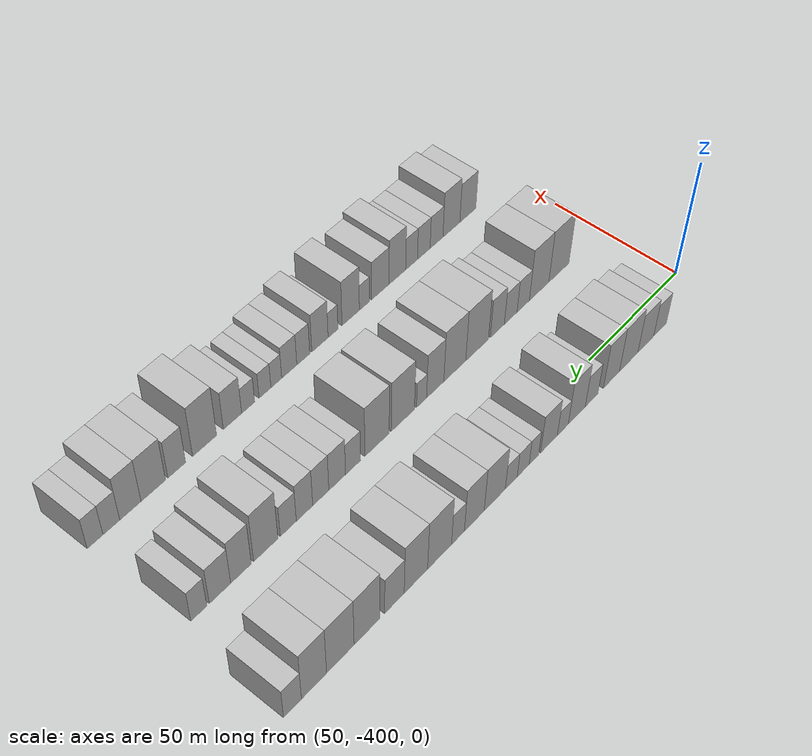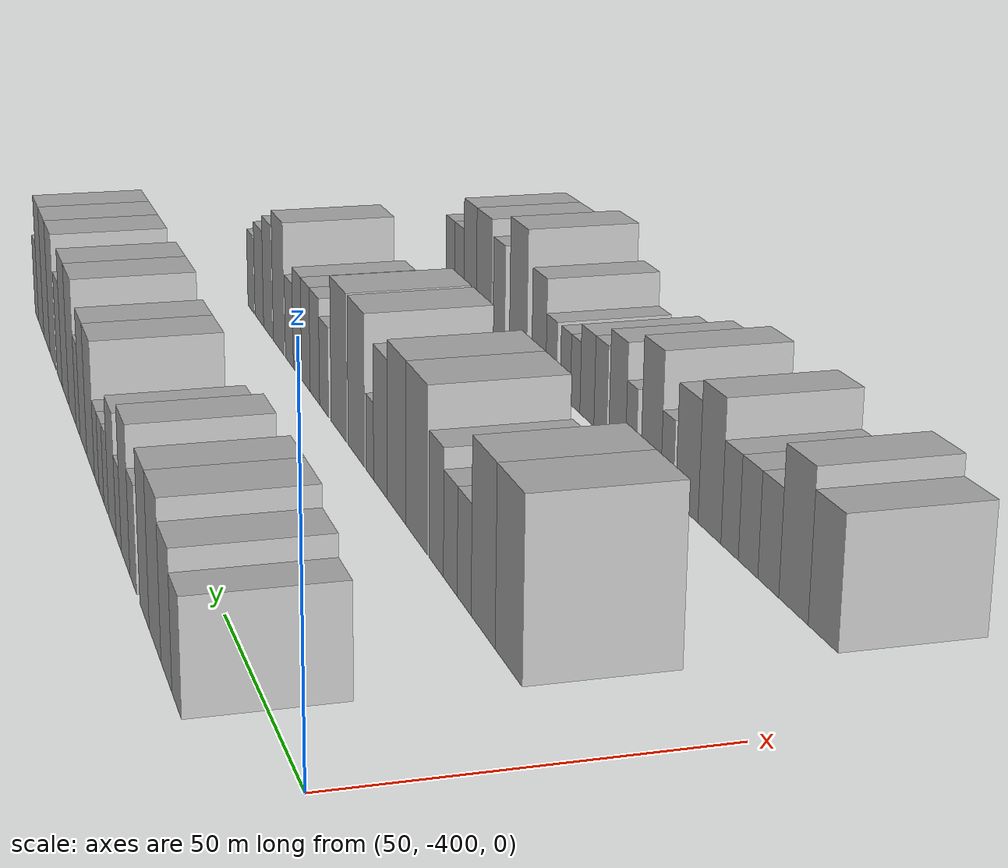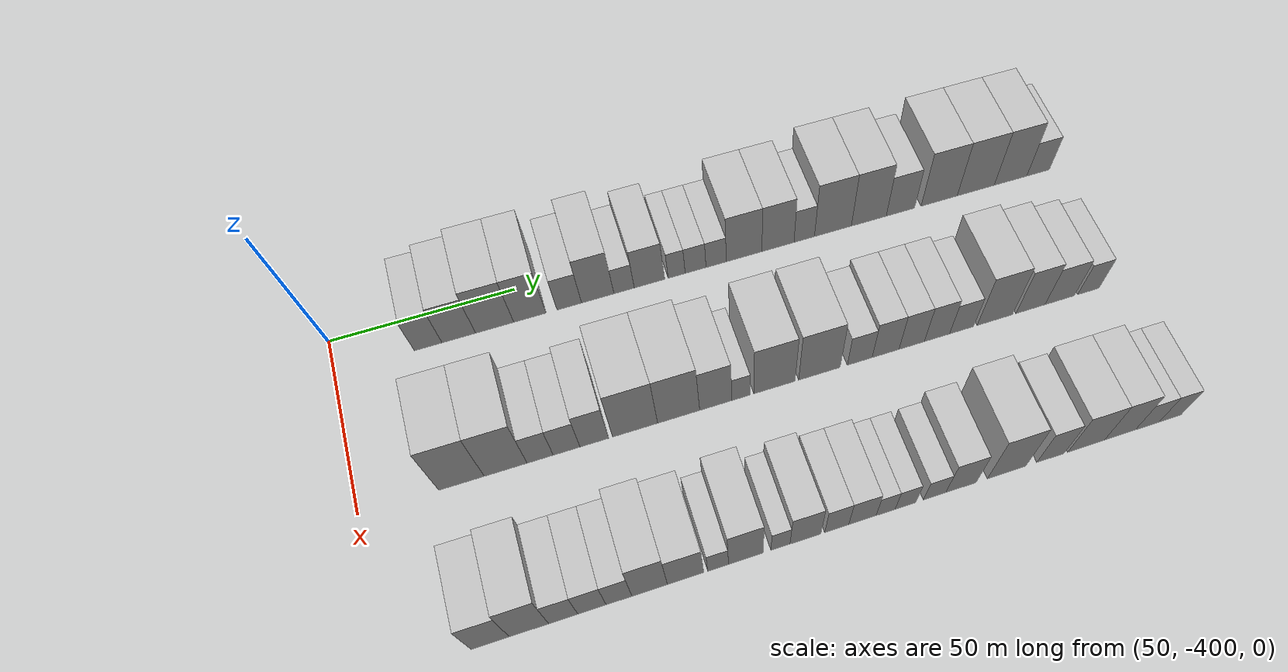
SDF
<sdf version="1.6">
 <world name="default">
  <model name="building_1">
   <static>1</static>
   <pose>50.0000 -375.3287 0 0.000000 0.000000 0.000000</pose>
   <link name="link">
    <pose>0 0 7.50 0 0 0</pose>
    <collision name="collision"><geometry><box><size>20.0000 7.3426 15.0000</size></box></geometry></collision>
    <visual name="visual">
     <cast_shadows>0</cast_shadows>
     <geometry><box><size>20.0000 7.3426 15.0000</size></box></geometry>
     <material>
      <script>
       <uri>model://HANNAS_wall/materials/scripts</uri>
       <uri>model://HANNAS_wall/materials/textures</uri>
       <name>vrc/HANNAS_wall</name>
      </script>
     </material>
    </visual>
   </link>
  </model>
  <model name="building_2">
   <static>1</static>
   <pose>50.0000 -367.1831 0 0.000000 0.000000 0.000000</pose>
   <link name="link">
    <pose>0 0 9.00 0 0 0</pose>
    <collision name="collision"><geometry><box><size>20.0000 8.9486 18.0000</size></box></geometry></collision>
    <visual name="visual">
     <cast_shadows>0</cast_shadows>
     <geometry><box><size>20.0000 8.9486 18.0000</size></box></geometry>
     <material>
      <script>
       <uri>model://HANNAS_wall/materials/scripts</uri>
       <uri>model://HANNAS_wall/materials/textures</uri>
       <name>vrc/HANNAS_wall</name>
      </script>
     </material>
    </visual>
   </link>
  </model>
  <model name="building_3">
   <static>1</static>
   <pose>50.0000 -357.5547 0 0.000000 0.000000 0.000000</pose>
   <link name="link">
    <pose>0 0 10.50 0 0 0</pose>
    <collision name="collision"><geometry><box><size>20.0000 10.3081 21.0000</size></box></geometry></collision>
    <visual name="visual">
     <cast_shadows>0</cast_shadows>
     <geometry><box><size>20.0000 10.3081 21.0000</size></box></geometry>
     <material>
      <script>
       <uri>model://HANNAS_wall/materials/scripts</uri>
       <uri>model://HANNAS_wall/materials/textures</uri>
       <name>vrc/HANNAS_wall</name>
      </script>
     </material>
    </visual>
   </link>
  </model>
  <model name="building_4">
   <static>1</static>
   <pose>50.0000 -347.9794 0 0.000000 0.000000 0.000000</pose>
   <link name="link">
    <pose>0 0 10.50 0 0 0</pose>
    <collision name="collision"><geometry><box><size>20.0000 8.8426 21.0000</size></box></geometry></collision>
    <visual name="visual">
     <cast_shadows>0</cast_shadows>
     <geometry><box><size>20.0000 8.8426 21.0000</size></box></geometry>
     <material>
      <script>
       <uri>model://HANNAS_wall/materials/scripts</uri>
       <uri>model://HANNAS_wall/materials/textures</uri>
       <name>vrc/HANNAS_wall</name>
      </script>
     </material>
    </visual>
   </link>
  </model>
  <model name="building_5">
   <static>1</static>
   <pose>50.0000 -337.1684 0 0.000000 0.000000 0.000000</pose>
   <link name="link">
    <pose>0 0 7.50 0 0 0</pose>
    <collision name="collision"><geometry><box><size>20.0000 6.7795 15.0000</size></box></geometry></collision>
    <visual name="visual">
     <cast_shadows>0</cast_shadows>
     <geometry><box><size>20.0000 6.7795 15.0000</size></box></geometry>
     <material>
      <script>
       <uri>model://HANNAS_wall/materials/scripts</uri>
       <uri>model://HANNAS_wall/materials/textures</uri>
       <name>vrc/HANNAS_wall</name>
      </script>
     </material>
    </visual>
   </link>
  </model>
  <model name="building_6">
   <static>1</static>
   <pose>50.0000 -329.2807 0 0.000000 0.000000 0.000000</pose>
   <link name="link">
    <pose>0 0 10.50 0 0 0</pose>
    <collision name="collision"><geometry><box><size>20.0000 8.9958 21.0000</size></box></geometry></collision>
    <visual name="visual">
     <cast_shadows>0</cast_shadows>
     <geometry><box><size>20.0000 8.9958 21.0000</size></box></geometry>
     <material>
      <script>
       <uri>model://HANNAS_wall/materials/scripts</uri>
       <uri>model://HANNAS_wall/materials/textures</uri>
       <name>vrc/HANNAS_wall</name>
      </script>
     </material>
    </visual>
   </link>
  </model>
  <model name="building_7">
   <static>1</static>
   <pose>50.0000 -321.9267 0 0.000000 0.000000 0.000000</pose>
   <link name="link">
    <pose>0 0 6.00 0 0 0</pose>
    <collision name="collision"><geometry><box><size>20.0000 5.7122 12.0000</size></box></geometry></collision>
    <visual name="visual">
     <cast_shadows>0</cast_shadows>
     <geometry><box><size>20.0000 5.7122 12.0000</size></box></geometry>
     <material>
      <script>
       <uri>model://HANNAS_wall/materials/scripts</uri>
       <uri>model://HANNAS_wall/materials/textures</uri>
       <name>vrc/HANNAS_wall</name>
      </script>
     </material>
    </visual>
   </link>
  </model>
  <model name="building_8">
   <static>1</static>
   <pose>50.0000 -314.7755 0 0.000000 0.000000 0.000000</pose>
   <link name="link">
    <pose>0 0 9.00 0 0 0</pose>
    <collision name="collision"><geometry><box><size>20.0000 8.5903 18.0000</size></box></geometry></collision>
    <visual name="visual">
     <cast_shadows>0</cast_shadows>
     <geometry><box><size>20.0000 8.5903 18.0000</size></box></geometry>
     <material>
      <script>
       <uri>model://HANNAS_wall/materials/scripts</uri>
       <uri>model://HANNAS_wall/materials/textures</uri>
       <name>vrc/HANNAS_wall</name>
      </script>
     </material>
    </visual>
   </link>
  </model>
  <model name="building_9">
   <static>1</static>
   <pose>50.0000 -307.0648 0 0.000000 0.000000 0.000000</pose>
   <link name="link">
    <pose>0 0 6.00 0 0 0</pose>
    <collision name="collision"><geometry><box><size>20.0000 4.8309 12.0000</size></box></geometry></collision>
    <visual name="visual">
     <cast_shadows>0</cast_shadows>
     <geometry><box><size>20.0000 4.8309 12.0000</size></box></geometry>
     <material>
      <script>
       <uri>model://HANNAS_wall/materials/scripts</uri>
       <uri>model://HANNAS_wall/materials/textures</uri>
       <name>vrc/HANNAS_wall</name>
      </script>
     </material>
    </visual>
   </link>
  </model>
  <model name="building_10">
   <static>1</static>
   <pose>50.0000 -301.6668 0 0.000000 0.000000 0.000000</pose>
   <link name="link">
    <pose>0 0 6.00 0 0 0</pose>
    <collision name="collision"><geometry><box><size>20.0000 5.9651 12.0000</size></box></geometry></collision>
    <visual name="visual">
     <cast_shadows>0</cast_shadows>
     <geometry><box><size>20.0000 5.9651 12.0000</size></box></geometry>
     <material>
      <script>
       <uri>model://HANNAS_wall/materials/scripts</uri>
       <uri>model://HANNAS_wall/materials/textures</uri>
       <name>vrc/HANNAS_wall</name>
      </script>
     </material>
    </visual>
   </link>
  </model>
  <model name="building_11">
   <static>1</static>
   <pose>50.0000 -295.7487 0 0.000000 0.000000 0.000000</pose>
   <link name="link">
    <pose>0 0 6.00 0 0 0</pose>
    <collision name="collision"><geometry><box><size>20.0000 5.8713 12.0000</size></box></geometry></collision>
    <visual name="visual">
     <cast_shadows>0</cast_shadows>
     <geometry><box><size>20.0000 5.8713 12.0000</size></box></geometry>
     <material>
      <script>
       <uri>model://HANNAS_wall/materials/scripts</uri>
       <uri>model://HANNAS_wall/materials/textures</uri>
       <name>vrc/HANNAS_wall</name>
      </script>
     </material>
    </visual>
   </link>
  </model>
  <model name="building_12">
   <static>1</static>
   <pose>50.0000 -287.6685 0 0.000000 0.000000 0.000000</pose>
   <link name="link">
    <pose>0 0 10.50 0 0 0</pose>
    <collision name="collision"><geometry><box><size>20.0000 10.2891 21.0000</size></box></geometry></collision>
    <visual name="visual">
     <cast_shadows>0</cast_shadows>
     <geometry><box><size>20.0000 10.2891 21.0000</size></box></geometry>
     <material>
      <script>
       <uri>model://HANNAS_wall/materials/scripts</uri>
       <uri>model://HANNAS_wall/materials/textures</uri>
       <name>vrc/HANNAS_wall</name>
      </script>
     </material>
    </visual>
   </link>
  </model>
  <model name="building_13">
   <static>1</static>
   <pose>50.0000 -277.7995 0 0.000000 0.000000 0.000000</pose>
   <link name="link">
    <pose>0 0 10.50 0 0 0</pose>
    <collision name="collision"><geometry><box><size>20.0000 9.4488 21.0000</size></box></geometry></collision>
    <visual name="visual">
     <cast_shadows>0</cast_shadows>
     <geometry><box><size>20.0000 9.4488 21.0000</size></box></geometry>
     <material>
      <script>
       <uri>model://HANNAS_wall/materials/scripts</uri>
       <uri>model://HANNAS_wall/materials/textures</uri>
       <name>vrc/HANNAS_wall</name>
      </script>
     </material>
    </visual>
   </link>
  </model>
  <model name="building_14">
   <static>1</static>
   <pose>50.0000 -270.0500 0 0.000000 0.000000 0.000000</pose>
   <link name="link">
    <pose>0 0 7.50 0 0 0</pose>
    <collision name="collision"><geometry><box><size>20.0000 6.0503 15.0000</size></box></geometry></collision>
    <visual name="visual">
     <cast_shadows>0</cast_shadows>
     <geometry><box><size>20.0000 6.0503 15.0000</size></box></geometry>
     <material>
      <script>
       <uri>model://HANNAS_wall/materials/scripts</uri>
       <uri>model://HANNAS_wall/materials/textures</uri>
       <name>vrc/HANNAS_wall</name>
      </script>
     </material>
    </visual>
   </link>
  </model>
  <model name="building_15">
   <static>1</static>
   <pose>50.0000 -261.5179 0 0.000000 0.000000 0.000000</pose>
   <link name="link">
    <pose>0 0 12.00 0 0 0</pose>
    <collision name="collision"><geometry><box><size>20.0000 11.0138 24.0000</size></box></geometry></collision>
    <visual name="visual">
     <cast_shadows>0</cast_shadows>
     <geometry><box><size>20.0000 11.0138 24.0000</size></box></geometry>
     <material>
      <script>
       <uri>model://HANNAS_wall/materials/scripts</uri>
       <uri>model://HANNAS_wall/materials/textures</uri>
       <name>vrc/HANNAS_wall</name>
      </script>
     </material>
    </visual>
   </link>
  </model>
  <model name="building_16">
   <static>1</static>
   <pose>50.0000 -250.7442 0 0.000000 0.000000 0.000000</pose>
   <link name="link">
    <pose>0 0 12.00 0 0 0</pose>
    <collision name="collision"><geometry><box><size>20.0000 10.5337 24.0000</size></box></geometry></collision>
    <visual name="visual">
     <cast_shadows>0</cast_shadows>
     <geometry><box><size>20.0000 10.5337 24.0000</size></box></geometry>
     <material>
      <script>
       <uri>model://HANNAS_wall/materials/scripts</uri>
       <uri>model://HANNAS_wall/materials/textures</uri>
       <name>vrc/HANNAS_wall</name>
      </script>
     </material>
    </visual>
   </link>
  </model>
  <model name="building_17">
   <static>1</static>
   <pose>50.0000 -241.1587 0 0.000000 0.000000 0.000000</pose>
   <link name="link">
    <pose>0 0 9.00 0 0 0</pose>
    <collision name="collision"><geometry><box><size>20.0000 8.6373 18.0000</size></box></geometry></collision>
    <visual name="visual">
     <cast_shadows>0</cast_shadows>
     <geometry><box><size>20.0000 8.6373 18.0000</size></box></geometry>
     <material>
      <script>
       <uri>model://HANNAS_wall/materials/scripts</uri>
       <uri>model://HANNAS_wall/materials/textures</uri>
       <name>vrc/HANNAS_wall</name>
      </script>
     </material>
    </visual>
   </link>
  </model>
  <model name="building_18">
   <static>1</static>
   <pose>50.0000 -229.2671 0 0.000000 0.000000 0.000000</pose>
   <link name="link">
    <pose>0 0 12.00 0 0 0</pose>
    <collision name="collision"><geometry><box><size>20.0000 11.1459 24.0000</size></box></geometry></collision>
    <visual name="visual">
     <cast_shadows>0</cast_shadows>
     <geometry><box><size>20.0000 11.1459 24.0000</size></box></geometry>
     <material>
      <script>
       <uri>model://HANNAS_wall/materials/scripts</uri>
       <uri>model://HANNAS_wall/materials/textures</uri>
       <name>vrc/HANNAS_wall</name>
      </script>
     </material>
    </visual>
   </link>
  </model>
  <model name="building_19">
   <static>1</static>
   <pose>50.0000 -217.9231 0 0.000000 0.000000 0.000000</pose>
   <link name="link">
    <pose>0 0 12.00 0 0 0</pose>
    <collision name="collision"><geometry><box><size>20.0000 11.5422 24.0000</size></box></geometry></collision>
    <visual name="visual">
     <cast_shadows>0</cast_shadows>
     <geometry><box><size>20.0000 11.5422 24.0000</size></box></geometry>
     <material>
      <script>
       <uri>model://HANNAS_wall/materials/scripts</uri>
       <uri>model://HANNAS_wall/materials/textures</uri>
       <name>vrc/HANNAS_wall</name>
      </script>
     </material>
    </visual>
   </link>
  </model>
  <model name="building_20">
   <static>1</static>
   <pose>50.0000 -207.0150 0 0.000000 0.000000 0.000000</pose>
   <link name="link">
    <pose>0 0 12.00 0 0 0</pose>
    <collision name="collision"><geometry><box><size>20.0000 10.2741 24.0000</size></box></geometry></collision>
    <visual name="visual">
     <cast_shadows>0</cast_shadows>
     <geometry><box><size>20.0000 10.2741 24.0000</size></box></geometry>
     <material>
      <script>
       <uri>model://HANNAS_wall/materials/scripts</uri>
       <uri>model://HANNAS_wall/materials/textures</uri>
       <name>vrc/HANNAS_wall</name>
      </script>
     </material>
    </visual>
   </link>
  </model>
  <model name="building_21">
   <static>1</static>
   <pose>50.0000 -198.2730 0 0.000000 0.000000 0.000000</pose>
   <link name="link">
    <pose>0 0 7.50 0 0 0</pose>
    <collision name="collision"><geometry><box><size>20.0000 7.2099 15.0000</size></box></geometry></collision>
    <visual name="visual">
     <cast_shadows>0</cast_shadows>
     <geometry><box><size>20.0000 7.2099 15.0000</size></box></geometry>
     <material>
      <script>
       <uri>model://HANNAS_wall/materials/scripts</uri>
       <uri>model://HANNAS_wall/materials/textures</uri>
       <name>vrc/HANNAS_wall</name>
      </script>
     </material>
    </visual>
   </link>
  </model>
  <model name="building_82">
   <static>1</static>
   <pose>90.0000 -374.3266 0 0.000000 0.000000 0.000000</pose>
   <link name="link">
    <pose>0 0 12.00 0 0 0</pose>
    <collision name="collision"><geometry><box><size>20.0000 11.3468 24.0000</size></box></geometry></collision>
    <visual name="visual">
     <cast_shadows>0</cast_shadows>
     <geometry><box><size>20.0000 11.3468 24.0000</size></box></geometry>
     <material>
      <script>
       <uri>model://HANNAS_wall/materials/scripts</uri>
       <uri>model://HANNAS_wall/materials/textures</uri>
       <name>vrc/HANNAS_wall</name>
      </script>
     </material>
    </visual>
   </link>
  </model>
  <model name="building_83">
   <static>1</static>
   <pose>90.0000 -363.2507 0 0.000000 0.000000 0.000000</pose>
   <link name="link">
    <pose>0 0 12.00 0 0 0</pose>
    <collision name="collision"><geometry><box><size>20.0000 10.8049 24.0000</size></box></geometry></collision>
    <visual name="visual">
     <cast_shadows>0</cast_shadows>
     <geometry><box><size>20.0000 10.8049 24.0000</size></box></geometry>
     <material>
      <script>
       <uri>model://HANNAS_wall/materials/scripts</uri>
       <uri>model://HANNAS_wall/materials/textures</uri>
       <name>vrc/HANNAS_wall</name>
      </script>
     </material>
    </visual>
   </link>
  </model>
  <model name="building_84">
   <static>1</static>
   <pose>90.0000 -354.5153 0 0.000000 0.000000 0.000000</pose>
   <link name="link">
    <pose>0 0 7.50 0 0 0</pose>
    <collision name="collision"><geometry><box><size>20.0000 6.6660 15.0000</size></box></geometry></collision>
    <visual name="visual">
     <cast_shadows>0</cast_shadows>
     <geometry><box><size>20.0000 6.6660 15.0000</size></box></geometry>
     <material>
      <script>
       <uri>model://HANNAS_wall/materials/scripts</uri>
       <uri>model://HANNAS_wall/materials/textures</uri>
       <name>vrc/HANNAS_wall</name>
      </script>
     </material>
    </visual>
   </link>
  </model>
  <model name="building_85">
   <static>1</static>
   <pose>90.0000 -347.7500 0 0.000000 0.000000 0.000000</pose>
   <link name="link">
    <pose>0 0 7.50 0 0 0</pose>
    <collision name="collision"><geometry><box><size>20.0000 6.8646 15.0000</size></box></geometry></collision>
    <visual name="visual">
     <cast_shadows>0</cast_shadows>
     <geometry><box><size>20.0000 6.8646 15.0000</size></box></geometry>
     <material>
      <script>
       <uri>model://HANNAS_wall/materials/scripts</uri>
       <uri>model://HANNAS_wall/materials/textures</uri>
       <name>vrc/HANNAS_wall</name>
      </script>
     </material>
    </visual>
   </link>
  </model>
  <model name="building_86">
   <static>1</static>
   <pose>90.0000 -340.5986 0 0.000000 0.000000 0.000000</pose>
   <link name="link">
    <pose>0 0 9.00 0 0 0</pose>
    <collision name="collision"><geometry><box><size>20.0000 7.4384 18.0000</size></box></geometry></collision>
    <visual name="visual">
     <cast_shadows>0</cast_shadows>
     <geometry><box><size>20.0000 7.4384 18.0000</size></box></geometry>
     <material>
      <script>
       <uri>model://HANNAS_wall/materials/scripts</uri>
       <uri>model://HANNAS_wall/materials/textures</uri>
       <name>vrc/HANNAS_wall</name>
      </script>
     </material>
    </visual>
   </link>
  </model>
  <model name="building_87">
   <static>1</static>
   <pose>90.0000 -329.9710 0 0.000000 0.000000 0.000000</pose>
   <link name="link">
    <pose>0 0 12.00 0 0 0</pose>
    <collision name="collision"><geometry><box><size>20.0000 11.8167 24.0000</size></box></geometry></collision>
    <visual name="visual">
     <cast_shadows>0</cast_shadows>
     <geometry><box><size>20.0000 11.8167 24.0000</size></box></geometry>
     <material>
      <script>
       <uri>model://HANNAS_wall/materials/scripts</uri>
       <uri>model://HANNAS_wall/materials/textures</uri>
       <name>vrc/HANNAS_wall</name>
      </script>
     </material>
    </visual>
   </link>
  </model>
  <model name="building_88">
   <static>1</static>
   <pose>90.0000 -318.4848 0 0.000000 0.000000 0.000000</pose>
   <link name="link">
    <pose>0 0 12.00 0 0 0</pose>
    <collision name="collision"><geometry><box><size>20.0000 11.1557 24.0000</size></box></geometry></collision>
    <visual name="visual">
     <cast_shadows>0</cast_shadows>
     <geometry><box><size>20.0000 11.1557 24.0000</size></box></geometry>
     <material>
      <script>
       <uri>model://HANNAS_wall/materials/scripts</uri>
       <uri>model://HANNAS_wall/materials/textures</uri>
       <name>vrc/HANNAS_wall</name>
      </script>
     </material>
    </visual>
   </link>
  </model>
  <model name="building_89">
   <static>1</static>
   <pose>90.0000 -308.5922 0 0.000000 0.000000 0.000000</pose>
   <link name="link">
    <pose>0 0 10.50 0 0 0</pose>
    <collision name="collision"><geometry><box><size>20.0000 8.6295 21.0000</size></box></geometry></collision>
    <visual name="visual">
     <cast_shadows>0</cast_shadows>
     <geometry><box><size>20.0000 8.6295 21.0000</size></box></geometry>
     <material>
      <script>
       <uri>model://HANNAS_wall/materials/scripts</uri>
       <uri>model://HANNAS_wall/materials/textures</uri>
       <name>vrc/HANNAS_wall</name>
      </script>
     </material>
    </visual>
   </link>
  </model>
  <model name="building_90">
   <static>1</static>
   <pose>90.0000 -301.8011 0 0.000000 0.000000 0.000000</pose>
   <link name="link">
    <pose>0 0 6.00 0 0 0</pose>
    <collision name="collision"><geometry><box><size>20.0000 4.9526 12.0000</size></box></geometry></collision>
    <visual name="visual">
     <cast_shadows>0</cast_shadows>
     <geometry><box><size>20.0000 4.9526 12.0000</size></box></geometry>
     <material>
      <script>
       <uri>model://HANNAS_wall/materials/scripts</uri>
       <uri>model://HANNAS_wall/materials/textures</uri>
       <name>vrc/HANNAS_wall</name>
      </script>
     </material>
    </visual>
   </link>
  </model>
  <model name="building_91">
   <static>1</static>
   <pose>90.0000 -292.7040 0 0.000000 0.000000 0.000000</pose>
   <link name="link">
    <pose>0 0 12.00 0 0 0</pose>
    <collision name="collision"><geometry><box><size>20.0000 11.2417 24.0000</size></box></geometry></collision>
    <visual name="visual">
     <cast_shadows>0</cast_shadows>
     <geometry><box><size>20.0000 11.2417 24.0000</size></box></geometry>
     <material>
      <script>
       <uri>model://HANNAS_wall/materials/scripts</uri>
       <uri>model://HANNAS_wall/materials/textures</uri>
       <name>vrc/HANNAS_wall</name>
      </script>
     </material>
    </visual>
   </link>
  </model>
  <model name="building_92">
   <static>1</static>
   <pose>90.0000 -280.3459 0 0.000000 0.000000 0.000000</pose>
   <link name="link">
    <pose>0 0 12.00 0 0 0</pose>
    <collision name="collision"><geometry><box><size>20.0000 11.4746 24.0000</size></box></geometry></collision>
    <visual name="visual">
     <cast_shadows>0</cast_shadows>
     <geometry><box><size>20.0000 11.4746 24.0000</size></box></geometry>
     <material>
      <script>
       <uri>model://HANNAS_wall/materials/scripts</uri>
       <uri>model://HANNAS_wall/materials/textures</uri>
       <name>vrc/HANNAS_wall</name>
      </script>
     </material>
    </visual>
   </link>
  </model>
  <model name="building_93">
   <static>1</static>
   <pose>90.0000 -269.1316 0 0.000000 0.000000 0.000000</pose>
   <link name="link">
    <pose>0 0 7.50 0 0 0</pose>
    <collision name="collision"><geometry><box><size>20.0000 6.9540 15.0000</size></box></geometry></collision>
    <visual name="visual">
     <cast_shadows>0</cast_shadows>
     <geometry><box><size>20.0000 6.9540 15.0000</size></box></geometry>
     <material>
      <script>
       <uri>model://HANNAS_wall/materials/scripts</uri>
       <uri>model://HANNAS_wall/materials/textures</uri>
       <name>vrc/HANNAS_wall</name>
      </script>
     </material>
    </visual>
   </link>
  </model>
  <model name="building_94">
   <static>1</static>
   <pose>90.0000 -261.8586 0 0.000000 0.000000 0.000000</pose>
   <link name="link">
    <pose>0 0 9.00 0 0 0</pose>
    <collision name="collision"><geometry><box><size>20.0000 7.5921 18.0000</size></box></geometry></collision>
    <visual name="visual">
     <cast_shadows>0</cast_shadows>
     <geometry><box><size>20.0000 7.5921 18.0000</size></box></geometry>
     <material>
      <script>
       <uri>model://HANNAS_wall/materials/scripts</uri>
       <uri>model://HANNAS_wall/materials/textures</uri>
       <name>vrc/HANNAS_wall</name>
      </script>
     </material>
    </visual>
   </link>
  </model>
  <model name="building_95">
   <static>1</static>
   <pose>90.0000 -254.4489 0 0.000000 0.000000 0.000000</pose>
   <link name="link">
    <pose>0 0 9.00 0 0 0</pose>
    <collision name="collision"><geometry><box><size>20.0000 7.2272 18.0000</size></box></geometry></collision>
    <visual name="visual">
     <cast_shadows>0</cast_shadows>
     <geometry><box><size>20.0000 7.2272 18.0000</size></box></geometry>
     <material>
      <script>
       <uri>model://HANNAS_wall/materials/scripts</uri>
       <uri>model://HANNAS_wall/materials/textures</uri>
       <name>vrc/HANNAS_wall</name>
      </script>
     </material>
    </visual>
   </link>
  </model>
  <model name="building_96">
   <static>1</static>
   <pose>90.0000 -247.2203 0 0.000000 0.000000 0.000000</pose>
   <link name="link">
    <pose>0 0 9.00 0 0 0</pose>
    <collision name="collision"><geometry><box><size>20.0000 7.2300 18.0000</size></box></geometry></collision>
    <visual name="visual">
     <cast_shadows>0</cast_shadows>
     <geometry><box><size>20.0000 7.2300 18.0000</size></box></geometry>
     <material>
      <script>
       <uri>model://HANNAS_wall/materials/scripts</uri>
       <uri>model://HANNAS_wall/materials/textures</uri>
       <name>vrc/HANNAS_wall</name>
      </script>
     </material>
    </visual>
   </link>
  </model>
  <model name="building_97">
   <static>1</static>
   <pose>90.0000 -240.1236 0 0.000000 0.000000 0.000000</pose>
   <link name="link">
    <pose>0 0 7.50 0 0 0</pose>
    <collision name="collision"><geometry><box><size>20.0000 6.9635 15.0000</size></box></geometry></collision>
    <visual name="visual">
     <cast_shadows>0</cast_shadows>
     <geometry><box><size>20.0000 6.9635 15.0000</size></box></geometry>
     <material>
      <script>
       <uri>model://HANNAS_wall/materials/scripts</uri>
       <uri>model://HANNAS_wall/materials/textures</uri>
       <name>vrc/HANNAS_wall</name>
      </script>
     </material>
    </visual>
   </link>
  </model>
  <model name="building_98">
   <static>1</static>
   <pose>90.0000 -230.4527 0 0.000000 0.000000 0.000000</pose>
   <link name="link">
    <pose>0 0 12.00 0 0 0</pose>
    <collision name="collision"><geometry><box><size>20.0000 10.3782 24.0000</size></box></geometry></collision>
    <visual name="visual">
     <cast_shadows>0</cast_shadows>
     <geometry><box><size>20.0000 10.3782 24.0000</size></box></geometry>
     <material>
      <script>
       <uri>model://HANNAS_wall/materials/scripts</uri>
       <uri>model://HANNAS_wall/materials/textures</uri>
       <name>vrc/HANNAS_wall</name>
      </script>
     </material>
    </visual>
   </link>
  </model>
  <model name="building_99">
   <static>1</static>
   <pose>90.0000 -219.9730 0 0.000000 0.000000 0.000000</pose>
   <link name="link">
    <pose>0 0 10.50 0 0 0</pose>
    <collision name="collision"><geometry><box><size>20.0000 8.5813 21.0000</size></box></geometry></collision>
    <visual name="visual">
     <cast_shadows>0</cast_shadows>
     <geometry><box><size>20.0000 8.5813 21.0000</size></box></geometry>
     <material>
      <script>
       <uri>model://HANNAS_wall/materials/scripts</uri>
       <uri>model://HANNAS_wall/materials/textures</uri>
       <name>vrc/HANNAS_wall</name>
      </script>
     </material>
    </visual>
   </link>
  </model>
  <model name="building_100">
   <static>1</static>
   <pose>90.0000 -211.3113 0 0.000000 0.000000 0.000000</pose>
   <link name="link">
    <pose>0 0 9.00 0 0 0</pose>
    <collision name="collision"><geometry><box><size>20.0000 8.7422 18.0000</size></box></geometry></collision>
    <visual name="visual">
     <cast_shadows>0</cast_shadows>
     <geometry><box><size>20.0000 8.7422 18.0000</size></box></geometry>
     <material>
      <script>
       <uri>model://HANNAS_wall/materials/scripts</uri>
       <uri>model://HANNAS_wall/materials/textures</uri>
       <name>vrc/HANNAS_wall</name>
      </script>
     </material>
    </visual>
   </link>
  </model>
  <model name="building_101">
   <static>1</static>
   <pose>90.0000 -202.7151 0 0.000000 0.000000 0.000000</pose>
   <link name="link">
    <pose>0 0 7.50 0 0 0</pose>
    <collision name="collision"><geometry><box><size>20.0000 6.4501 15.0000</size></box></geometry></collision>
    <visual name="visual">
     <cast_shadows>0</cast_shadows>
     <geometry><box><size>20.0000 6.4501 15.0000</size></box></geometry>
     <material>
      <script>
       <uri>model://HANNAS_wall/materials/scripts</uri>
       <uri>model://HANNAS_wall/materials/textures</uri>
       <name>vrc/HANNAS_wall</name>
      </script>
     </material>
    </visual>
   </link>
  </model>
  <model name="building_166">
   <static>1</static>
   <pose>130.0000 -375.5581 0 0.000000 0.000000 0.000000</pose>
   <link name="link">
    <pose>0 0 9.00 0 0 0</pose>
    <collision name="collision"><geometry><box><size>20.0000 8.8837 18.0000</size></box></geometry></collision>
    <visual name="visual">
     <cast_shadows>0</cast_shadows>
     <geometry><box><size>20.0000 8.8837 18.0000</size></box></geometry>
     <material>
      <script>
       <uri>model://HANNAS_wall/materials/scripts</uri>
       <uri>model://HANNAS_wall/materials/textures</uri>
       <name>vrc/HANNAS_wall</name>
      </script>
     </material>
    </visual>
   </link>
  </model>
  <model name="building_167">
   <static>1</static>
   <pose>130.0000 -366.4834 0 0.000000 0.000000 0.000000</pose>
   <link name="link">
    <pose>0 0 10.50 0 0 0</pose>
    <collision name="collision"><geometry><box><size>20.0000 9.2658 21.0000</size></box></geometry></collision>
    <visual name="visual">
     <cast_shadows>0</cast_shadows>
     <geometry><box><size>20.0000 9.2658 21.0000</size></box></geometry>
     <material>
      <script>
       <uri>model://HANNAS_wall/materials/scripts</uri>
       <uri>model://HANNAS_wall/materials/textures</uri>
       <name>vrc/HANNAS_wall</name>
      </script>
     </material>
    </visual>
   </link>
  </model>
  <model name="building_168">
   <static>1</static>
   <pose>130.0000 -358.3851 0 0.000000 0.000000 0.000000</pose>
   <link name="link">
    <pose>0 0 7.50 0 0 0</pose>
    <collision name="collision"><geometry><box><size>20.0000 6.9308 15.0000</size></box></geometry></collision>
    <visual name="visual">
     <cast_shadows>0</cast_shadows>
     <geometry><box><size>20.0000 6.9308 15.0000</size></box></geometry>
     <material>
      <script>
       <uri>model://HANNAS_wall/materials/scripts</uri>
       <uri>model://HANNAS_wall/materials/textures</uri>
       <name>vrc/HANNAS_wall</name>
      </script>
     </material>
    </visual>
   </link>
  </model>
  <model name="building_169">
   <static>1</static>
   <pose>130.0000 -351.5341 0 0.000000 0.000000 0.000000</pose>
   <link name="link">
    <pose>0 0 7.50 0 0 0</pose>
    <collision name="collision"><geometry><box><size>20.0000 6.7712 15.0000</size></box></geometry></collision>
    <visual name="visual">
     <cast_shadows>0</cast_shadows>
     <geometry><box><size>20.0000 6.7712 15.0000</size></box></geometry>
     <material>
      <script>
       <uri>model://HANNAS_wall/materials/scripts</uri>
       <uri>model://HANNAS_wall/materials/textures</uri>
       <name>vrc/HANNAS_wall</name>
      </script>
     </material>
    </visual>
   </link>
  </model>
  <model name="building_170">
   <static>1</static>
   <pose>130.0000 -345.0264 0 0.000000 0.000000 0.000000</pose>
   <link name="link">
    <pose>0 0 7.50 0 0 0</pose>
    <collision name="collision"><geometry><box><size>20.0000 6.2443 15.0000</size></box></geometry></collision>
    <visual name="visual">
     <cast_shadows>0</cast_shadows>
     <geometry><box><size>20.0000 6.2443 15.0000</size></box></geometry>
     <material>
      <script>
       <uri>model://HANNAS_wall/materials/scripts</uri>
       <uri>model://HANNAS_wall/materials/textures</uri>
       <name>vrc/HANNAS_wall</name>
      </script>
     </material>
    </visual>
   </link>
  </model>
  <model name="building_171">
   <static>1</static>
   <pose>130.0000 -337.5829 0 0.000000 0.000000 0.000000</pose>
   <link name="link">
    <pose>0 0 10.50 0 0 0</pose>
    <collision name="collision"><geometry><box><size>20.0000 8.6426 21.0000</size></box></geometry></collision>
    <visual name="visual">
     <cast_shadows>0</cast_shadows>
     <geometry><box><size>20.0000 8.6426 21.0000</size></box></geometry>
     <material>
      <script>
       <uri>model://HANNAS_wall/materials/scripts</uri>
       <uri>model://HANNAS_wall/materials/textures</uri>
       <name>vrc/HANNAS_wall</name>
      </script>
     </material>
    </visual>
   </link>
  </model>
  <model name="building_172">
   <static>1</static>
   <pose>130.0000 -328.7940 0 0.000000 0.000000 0.000000</pose>
   <link name="link">
    <pose>0 0 9.00 0 0 0</pose>
    <collision name="collision"><geometry><box><size>20.0000 8.9352 18.0000</size></box></geometry></collision>
    <visual name="visual">
     <cast_shadows>0</cast_shadows>
     <geometry><box><size>20.0000 8.9352 18.0000</size></box></geometry>
     <material>
      <script>
       <uri>model://HANNAS_wall/materials/scripts</uri>
       <uri>model://HANNAS_wall/materials/textures</uri>
       <name>vrc/HANNAS_wall</name>
      </script>
     </material>
    </visual>
   </link>
  </model>
  <model name="building_173">
   <static>1</static>
   <pose>130.0000 -320.7442 0 0.000000 0.000000 0.000000</pose>
   <link name="link">
    <pose>0 0 6.00 0 0 0</pose>
    <collision name="collision"><geometry><box><size>20.0000 5.1645 12.0000</size></box></geometry></collision>
    <visual name="visual">
     <cast_shadows>0</cast_shadows>
     <geometry><box><size>20.0000 5.1645 12.0000</size></box></geometry>
     <material>
      <script>
       <uri>model://HANNAS_wall/materials/scripts</uri>
       <uri>model://HANNAS_wall/materials/textures</uri>
       <name>vrc/HANNAS_wall</name>
      </script>
     </material>
    </visual>
   </link>
  </model>
  <model name="building_174">
   <static>1</static>
   <pose>130.0000 -313.8373 0 0.000000 0.000000 0.000000</pose>
   <link name="link">
    <pose>0 0 10.50 0 0 0</pose>
    <collision name="collision"><geometry><box><size>20.0000 8.6492 21.0000</size></box></geometry></collision>
    <visual name="visual">
     <cast_shadows>0</cast_shadows>
     <geometry><box><size>20.0000 8.6492 21.0000</size></box></geometry>
     <material>
      <script>
       <uri>model://HANNAS_wall/materials/scripts</uri>
       <uri>model://HANNAS_wall/materials/textures</uri>
       <name>vrc/HANNAS_wall</name>
      </script>
     </material>
    </visual>
   </link>
  </model>
  <model name="building_175">
   <static>1</static>
   <pose>130.0000 -305.1006 0 0.000000 0.000000 0.000000</pose>
   <link name="link">
    <pose>0 0 6.00 0 0 0</pose>
    <collision name="collision"><geometry><box><size>20.0000 4.8242 12.0000</size></box></geometry></collision>
    <visual name="visual">
     <cast_shadows>0</cast_shadows>
     <geometry><box><size>20.0000 4.8242 12.0000</size></box></geometry>
     <material>
      <script>
       <uri>model://HANNAS_wall/materials/scripts</uri>
       <uri>model://HANNAS_wall/materials/textures</uri>
       <name>vrc/HANNAS_wall</name>
      </script>
     </material>
    </visual>
   </link>
  </model>
  <model name="building_176">
   <static>1</static>
   <pose>130.0000 -298.7508 0 0.000000 0.000000 0.000000</pose>
   <link name="link">
    <pose>0 0 9.00 0 0 0</pose>
    <collision name="collision"><geometry><box><size>20.0000 7.8753 18.0000</size></box></geometry></collision>
    <visual name="visual">
     <cast_shadows>0</cast_shadows>
     <geometry><box><size>20.0000 7.8753 18.0000</size></box></geometry>
     <material>
      <script>
       <uri>model://HANNAS_wall/materials/scripts</uri>
       <uri>model://HANNAS_wall/materials/textures</uri>
       <name>vrc/HANNAS_wall</name>
      </script>
     </material>
    </visual>
   </link>
  </model>
  <model name="building_177">
   <static>1</static>
   <pose>130.0000 -290.7258 0 0.000000 0.000000 0.000000</pose>
   <link name="link">
    <pose>0 0 7.50 0 0 0</pose>
    <collision name="collision"><geometry><box><size>20.0000 6.1745 15.0000</size></box></geometry></collision>
    <visual name="visual">
     <cast_shadows>0</cast_shadows>
     <geometry><box><size>20.0000 6.1745 15.0000</size></box></geometry>
     <material>
      <script>
       <uri>model://HANNAS_wall/materials/scripts</uri>
       <uri>model://HANNAS_wall/materials/textures</uri>
       <name>vrc/HANNAS_wall</name>
      </script>
     </material>
    </visual>
   </link>
  </model>
  <model name="building_178">
   <static>1</static>
   <pose>130.0000 -284.0810 0 0.000000 0.000000 0.000000</pose>
   <link name="link">
    <pose>0 0 7.50 0 0 0</pose>
    <collision name="collision"><geometry><box><size>20.0000 7.1152 15.0000</size></box></geometry></collision>
    <visual name="visual">
     <cast_shadows>0</cast_shadows>
     <geometry><box><size>20.0000 7.1152 15.0000</size></box></geometry>
     <material>
      <script>
       <uri>model://HANNAS_wall/materials/scripts</uri>
       <uri>model://HANNAS_wall/materials/textures</uri>
       <name>vrc/HANNAS_wall</name>
      </script>
     </material>
    </visual>
   </link>
  </model>
  <model name="building_179">
   <static>1</static>
   <pose>130.0000 -278.0293 0 0.000000 0.000000 0.000000</pose>
   <link name="link">
    <pose>0 0 6.00 0 0 0</pose>
    <collision name="collision"><geometry><box><size>20.0000 4.9882 12.0000</size></box></geometry></collision>
    <visual name="visual">
     <cast_shadows>0</cast_shadows>
     <geometry><box><size>20.0000 4.9882 12.0000</size></box></geometry>
     <material>
      <script>
       <uri>model://HANNAS_wall/materials/scripts</uri>
       <uri>model://HANNAS_wall/materials/textures</uri>
       <name>vrc/HANNAS_wall</name>
      </script>
     </material>
    </visual>
   </link>
  </model>
  <model name="building_180">
   <static>1</static>
   <pose>130.0000 -272.8084 0 0.000000 0.000000 0.000000</pose>
   <link name="link">
    <pose>0 0 6.00 0 0 0</pose>
    <collision name="collision"><geometry><box><size>20.0000 5.4536 12.0000</size></box></geometry></collision>
    <visual name="visual">
     <cast_shadows>0</cast_shadows>
     <geometry><box><size>20.0000 5.4536 12.0000</size></box></geometry>
     <material>
      <script>
       <uri>model://HANNAS_wall/materials/scripts</uri>
       <uri>model://HANNAS_wall/materials/textures</uri>
       <name>vrc/HANNAS_wall</name>
      </script>
     </material>
    </visual>
   </link>
  </model>
  <model name="building_181">
   <static>1</static>
   <pose>130.0000 -265.1176 0 0.000000 0.000000 0.000000</pose>
   <link name="link">
    <pose>0 0 6.00 0 0 0</pose>
    <collision name="collision"><geometry><box><size>20.0000 5.9282 12.0000</size></box></geometry></collision>
    <visual name="visual">
     <cast_shadows>0</cast_shadows>
     <geometry><box><size>20.0000 5.9282 12.0000</size></box></geometry>
     <material>
      <script>
       <uri>model://HANNAS_wall/materials/scripts</uri>
       <uri>model://HANNAS_wall/materials/textures</uri>
       <name>vrc/HANNAS_wall</name>
      </script>
     </material>
    </visual>
   </link>
  </model>
  <model name="building_182">
   <static>1</static>
   <pose>130.0000 -258.0625 0 0.000000 0.000000 0.000000</pose>
   <link name="link">
    <pose>0 0 9.00 0 0 0</pose>
    <collision name="collision"><geometry><box><size>20.0000 8.1819 18.0000</size></box></geometry></collision>
    <visual name="visual">
     <cast_shadows>0</cast_shadows>
     <geometry><box><size>20.0000 8.1819 18.0000</size></box></geometry>
     <material>
      <script>
       <uri>model://HANNAS_wall/materials/scripts</uri>
       <uri>model://HANNAS_wall/materials/textures</uri>
       <name>vrc/HANNAS_wall</name>
      </script>
     </material>
    </visual>
   </link>
  </model>
  <model name="building_183">
   <static>1</static>
   <pose>130.0000 -245.7278 0 0.000000 0.000000 0.000000</pose>
   <link name="link">
    <pose>0 0 12.00 0 0 0</pose>
    <collision name="collision"><geometry><box><size>20.0000 10.4876 24.0000</size></box></geometry></collision>
    <visual name="visual">
     <cast_shadows>0</cast_shadows>
     <geometry><box><size>20.0000 10.4876 24.0000</size></box></geometry>
     <material>
      <script>
       <uri>model://HANNAS_wall/materials/scripts</uri>
       <uri>model://HANNAS_wall/materials/textures</uri>
       <name>vrc/HANNAS_wall</name>
      </script>
     </material>
    </visual>
   </link>
  </model>
  <model name="building_184">
   <static>1</static>
   <pose>130.0000 -233.7150 0 0.000000 0.000000 0.000000</pose>
   <link name="link">
    <pose>0 0 9.00 0 0 0</pose>
    <collision name="collision"><geometry><box><size>20.0000 7.5380 18.0000</size></box></geometry></collision>
    <visual name="visual">
     <cast_shadows>0</cast_shadows>
     <geometry><box><size>20.0000 7.5380 18.0000</size></box></geometry>
     <material>
      <script>
       <uri>model://HANNAS_wall/materials/scripts</uri>
       <uri>model://HANNAS_wall/materials/textures</uri>
       <name>vrc/HANNAS_wall</name>
      </script>
     </material>
    </visual>
   </link>
  </model>
  <model name="building_185">
   <static>1</static>
   <pose>130.0000 -223.8285 0 0.000000 0.000000 0.000000</pose>
   <link name="link">
    <pose>0 0 10.50 0 0 0</pose>
    <collision name="collision"><geometry><box><size>20.0000 10.2350 21.0000</size></box></geometry></collision>
    <visual name="visual">
     <cast_shadows>0</cast_shadows>
     <geometry><box><size>20.0000 10.2350 21.0000</size></box></geometry>
     <material>
      <script>
       <uri>model://HANNAS_wall/materials/scripts</uri>
       <uri>model://HANNAS_wall/materials/textures</uri>
       <name>vrc/HANNAS_wall</name>
      </script>
     </material>
    </visual>
   </link>
  </model>
  <model name="building_186">
   <static>1</static>
   <pose>130.0000 -214.3607 0 0.000000 0.000000 0.000000</pose>
   <link name="link">
    <pose>0 0 10.50 0 0 0</pose>
    <collision name="collision"><geometry><box><size>20.0000 8.7006 21.0000</size></box></geometry></collision>
    <visual name="visual">
     <cast_shadows>0</cast_shadows>
     <geometry><box><size>20.0000 8.7006 21.0000</size></box></geometry>
     <material>
      <script>
       <uri>model://HANNAS_wall/materials/scripts</uri>
       <uri>model://HANNAS_wall/materials/textures</uri>
       <name>vrc/HANNAS_wall</name>
      </script>
     </material>
    </visual>
   </link>
  </model>
  <model name="building_187">
   <static>1</static>
   <pose>130.0000 -206.6181 0 0.000000 0.000000 0.000000</pose>
   <link name="link">
    <pose>0 0 7.50 0 0 0</pose>
    <collision name="collision"><geometry><box><size>20.0000 6.7845 15.0000</size></box></geometry></collision>
    <visual name="visual">
     <cast_shadows>0</cast_shadows>
     <geometry><box><size>20.0000 6.7845 15.0000</size></box></geometry>
     <material>
      <script>
       <uri>model://HANNAS_wall/materials/scripts</uri>
       <uri>model://HANNAS_wall/materials/textures</uri>
       <name>vrc/HANNAS_wall</name>
      </script>
     </material>
    </visual>
   </link>
  </model>
  <model name="building_188">
   <static>1</static>
   <pose>130.0000 -200.0802 0 0.000000 0.000000 0.000000</pose>
   <link name="link">
    <pose>0 0 7.50 0 0 0</pose>
    <collision name="collision"><geometry><box><size>20.0000 6.2914 15.0000</size></box></geometry></collision>
    <visual name="visual">
     <cast_shadows>0</cast_shadows>
     <geometry><box><size>20.0000 6.2914 15.0000</size></box></geometry>
     <material>
      <script>
       <uri>model://HANNAS_wall/materials/scripts</uri>
       <uri>model://HANNAS_wall/materials/textures</uri>
       <name>vrc/HANNAS_wall</name>
      </script>
     </material>
    </visual>
   </link>
  </model>
 </world>
</sdf>
